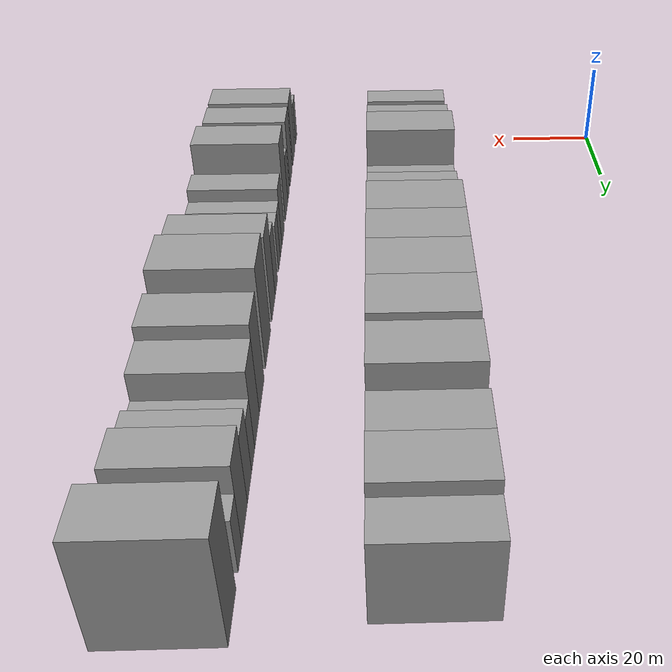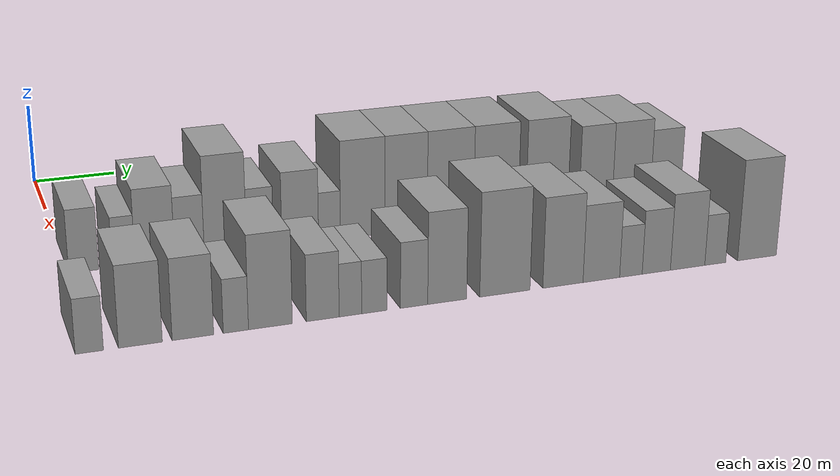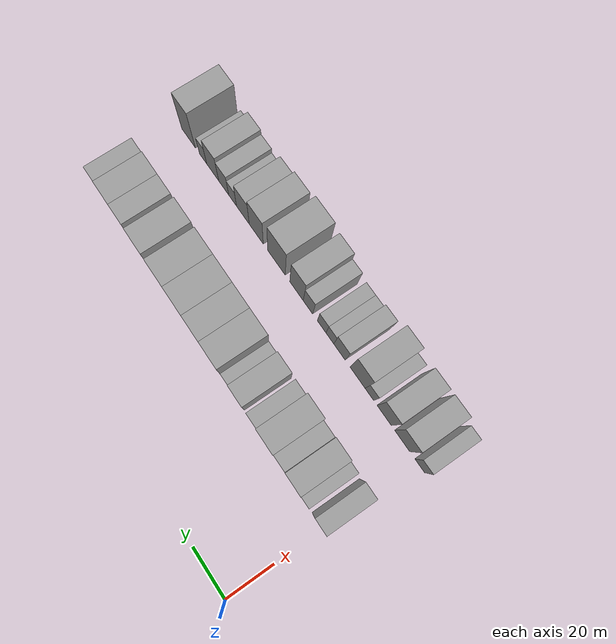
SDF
<sdf version="1.6">
 <world name="default">
  <model name="building_35">
   <static>1</static>
   <pose>50.0000 3.3389 0 0.000000 0.000000 0.000000</pose>
   <link name="link">
    <pose>0 0 7.50 0 0 0</pose>
    <collision name="collision"><geometry><box><size>20.0000 6.6458 15.0000</size></box></geometry></collision>
    <visual name="visual">
     <cast_shadows>0</cast_shadows>
     <geometry><box><size>20.0000 6.6458 15.0000</size></box></geometry>
     <material>
      <script>
       <uri>model://grey_wall/materials/scripts</uri>
       <uri>model://grey_wall/materials/textures</uri>
       <name>vrc/grey_wall</name>
      </script>
     </material>
    </visual>
   </link>
  </model>
  <model name="building_36">
   <static>1</static>
   <pose>50.0000 12.2295 0 0.000000 0.000000 0.000000</pose>
   <link name="link">
    <pose>0 0 6.00 0 0 0</pose>
    <collision name="collision"><geometry><box><size>20.0000 5.1353 12.0000</size></box></geometry></collision>
    <visual name="visual">
     <cast_shadows>0</cast_shadows>
     <geometry><box><size>20.0000 5.1353 12.0000</size></box></geometry>
     <material>
      <script>
       <uri>model://grey_wall/materials/scripts</uri>
       <uri>model://grey_wall/materials/textures</uri>
       <name>vrc/grey_wall</name>
      </script>
     </material>
    </visual>
   </link>
  </model>
  <model name="building_37">
   <static>1</static>
   <pose>50.0000 19.2701 0 0.000000 0.000000 0.000000</pose>
   <link name="link">
    <pose>0 0 9.00 0 0 0</pose>
    <collision name="collision"><geometry><box><size>20.0000 8.9459 18.0000</size></box></geometry></collision>
    <visual name="visual">
     <cast_shadows>0</cast_shadows>
     <geometry><box><size>20.0000 8.9459 18.0000</size></box></geometry>
     <material>
      <script>
       <uri>model://grey_wall/materials/scripts</uri>
       <uri>model://grey_wall/materials/textures</uri>
       <name>vrc/grey_wall</name>
      </script>
     </material>
    </visual>
   </link>
  </model>
  <model name="building_38">
   <static>1</static>
   <pose>50.0000 27.1577 0 0.000000 0.000000 0.000000</pose>
   <link name="link">
    <pose>0 0 7.50 0 0 0</pose>
    <collision name="collision"><geometry><box><size>20.0000 6.8295 15.0000</size></box></geometry></collision>
    <visual name="visual">
     <cast_shadows>0</cast_shadows>
     <geometry><box><size>20.0000 6.8295 15.0000</size></box></geometry>
     <material>
      <script>
       <uri>model://grey_wall/materials/scripts</uri>
       <uri>model://grey_wall/materials/textures</uri>
       <name>vrc/grey_wall</name>
      </script>
     </material>
    </visual>
   </link>
  </model>
  <model name="building_39">
   <static>1</static>
   <pose>50.0000 35.4678 0 0.000000 0.000000 0.000000</pose>
   <link name="link">
    <pose>0 0 12.00 0 0 0</pose>
    <collision name="collision"><geometry><box><size>20.0000 9.7906 24.0000</size></box></geometry></collision>
    <visual name="visual">
     <cast_shadows>0</cast_shadows>
     <geometry><box><size>20.0000 9.7906 24.0000</size></box></geometry>
     <material>
      <script>
       <uri>model://grey_wall/materials/scripts</uri>
       <uri>model://grey_wall/materials/textures</uri>
       <name>vrc/grey_wall</name>
      </script>
     </material>
    </visual>
   </link>
  </model>
  <model name="building_40">
   <static>1</static>
   <pose>50.0000 43.5273 0 0.000000 0.000000 0.000000</pose>
   <link name="link">
    <pose>0 0 7.50 0 0 0</pose>
    <collision name="collision"><geometry><box><size>20.0000 6.3284 15.0000</size></box></geometry></collision>
    <visual name="visual">
     <cast_shadows>0</cast_shadows>
     <geometry><box><size>20.0000 6.3284 15.0000</size></box></geometry>
     <material>
      <script>
       <uri>model://grey_wall/materials/scripts</uri>
       <uri>model://grey_wall/materials/textures</uri>
       <name>vrc/grey_wall</name>
      </script>
     </material>
    </visual>
   </link>
  </model>
  <model name="building_41">
   <static>1</static>
   <pose>50.0000 53.0629 0 0.000000 0.000000 0.000000</pose>
   <link name="link">
    <pose>0 0 9.00 0 0 0</pose>
    <collision name="collision"><geometry><box><size>20.0000 8.7427 18.0000</size></box></geometry></collision>
    <visual name="visual">
     <cast_shadows>0</cast_shadows>
     <geometry><box><size>20.0000 8.7427 18.0000</size></box></geometry>
     <material>
      <script>
       <uri>model://grey_wall/materials/scripts</uri>
       <uri>model://grey_wall/materials/textures</uri>
       <name>vrc/grey_wall</name>
      </script>
     </material>
    </visual>
   </link>
  </model>
  <model name="building_42">
   <static>1</static>
   <pose>50.0000 60.0749 0 0.000000 0.000000 0.000000</pose>
   <link name="link">
    <pose>0 0 6.00 0 0 0</pose>
    <collision name="collision"><geometry><box><size>20.0000 5.2812 12.0000</size></box></geometry></collision>
    <visual name="visual">
     <cast_shadows>0</cast_shadows>
     <geometry><box><size>20.0000 5.2812 12.0000</size></box></geometry>
     <material>
      <script>
       <uri>model://grey_wall/materials/scripts</uri>
       <uri>model://grey_wall/materials/textures</uri>
       <name>vrc/grey_wall</name>
      </script>
     </material>
    </visual>
   </link>
  </model>
  <model name="building_43">
   <static>1</static>
   <pose>50.0000 68.1646 0 0.000000 0.000000 0.000000</pose>
   <link name="link">
    <pose>0 0 12.00 0 0 0</pose>
    <collision name="collision"><geometry><box><size>20.0000 10.8982 24.0000</size></box></geometry></collision>
    <visual name="visual">
     <cast_shadows>0</cast_shadows>
     <geometry><box><size>20.0000 10.8982 24.0000</size></box></geometry>
     <material>
      <script>
       <uri>model://grey_wall/materials/scripts</uri>
       <uri>model://grey_wall/materials/textures</uri>
       <name>vrc/grey_wall</name>
      </script>
     </material>
    </visual>
   </link>
  </model>
  <model name="building_44">
   <static>1</static>
   <pose>50.0000 78.8283 0 0.000000 0.000000 0.000000</pose>
   <link name="link">
    <pose>0 0 12.00 0 0 0</pose>
    <collision name="collision"><geometry><box><size>20.0000 10.4291 24.0000</size></box></geometry></collision>
    <visual name="visual">
     <cast_shadows>0</cast_shadows>
     <geometry><box><size>20.0000 10.4291 24.0000</size></box></geometry>
     <material>
      <script>
       <uri>model://grey_wall/materials/scripts</uri>
       <uri>model://grey_wall/materials/textures</uri>
       <name>vrc/grey_wall</name>
      </script>
     </material>
    </visual>
   </link>
  </model>
  <model name="building_45">
   <static>1</static>
   <pose>50.0000 89.8818 0 0.000000 0.000000 0.000000</pose>
   <link name="link">
    <pose>0 0 12.00 0 0 0</pose>
    <collision name="collision"><geometry><box><size>20.0000 11.6781 24.0000</size></box></geometry></collision>
    <visual name="visual">
     <cast_shadows>0</cast_shadows>
     <geometry><box><size>20.0000 11.6781 24.0000</size></box></geometry>
     <material>
      <script>
       <uri>model://grey_wall/materials/scripts</uri>
       <uri>model://grey_wall/materials/textures</uri>
       <name>vrc/grey_wall</name>
      </script>
     </material>
    </visual>
   </link>
  </model>
  <model name="building_46">
   <static>1</static>
   <pose>50.0000 101.4407 0 0.000000 0.000000 0.000000</pose>
   <link name="link">
    <pose>0 0 12.00 0 0 0</pose>
    <collision name="collision"><geometry><box><size>20.0000 11.4396 24.0000</size></box></geometry></collision>
    <visual name="visual">
     <cast_shadows>0</cast_shadows>
     <geometry><box><size>20.0000 11.4396 24.0000</size></box></geometry>
     <material>
      <script>
       <uri>model://grey_wall/materials/scripts</uri>
       <uri>model://grey_wall/materials/textures</uri>
       <name>vrc/grey_wall</name>
      </script>
     </material>
    </visual>
   </link>
  </model>
  <model name="building_47">
   <static>1</static>
   <pose>50.0000 114.6288 0 0.000000 0.000000 0.000000</pose>
   <link name="link">
    <pose>0 0 12.00 0 0 0</pose>
    <collision name="collision"><geometry><box><size>20.0000 10.9366 24.0000</size></box></geometry></collision>
    <visual name="visual">
     <cast_shadows>0</cast_shadows>
     <geometry><box><size>20.0000 10.9366 24.0000</size></box></geometry>
     <material>
      <script>
       <uri>model://grey_wall/materials/scripts</uri>
       <uri>model://grey_wall/materials/textures</uri>
       <name>vrc/grey_wall</name>
      </script>
     </material>
    </visual>
   </link>
  </model>
  <model name="building_48">
   <static>1</static>
   <pose>50.0000 127.5241 0 0.000000 0.000000 0.000000</pose>
   <link name="link">
    <pose>0 0 10.50 0 0 0</pose>
    <collision name="collision"><geometry><box><size>20.0000 8.8540 21.0000</size></box></geometry></collision>
    <visual name="visual">
     <cast_shadows>0</cast_shadows>
     <geometry><box><size>20.0000 8.8540 21.0000</size></box></geometry>
     <material>
      <script>
       <uri>model://grey_wall/materials/scripts</uri>
       <uri>model://grey_wall/materials/textures</uri>
       <name>vrc/grey_wall</name>
      </script>
     </material>
    </visual>
   </link>
  </model>
  <model name="building_49">
   <static>1</static>
   <pose>50.0000 137.0890 0 0.000000 0.000000 0.000000</pose>
   <link name="link">
    <pose>0 0 10.50 0 0 0</pose>
    <collision name="collision"><geometry><box><size>20.0000 10.2759 21.0000</size></box></geometry></collision>
    <visual name="visual">
     <cast_shadows>0</cast_shadows>
     <geometry><box><size>20.0000 10.2759 21.0000</size></box></geometry>
     <material>
      <script>
       <uri>model://grey_wall/materials/scripts</uri>
       <uri>model://grey_wall/materials/textures</uri>
       <name>vrc/grey_wall</name>
      </script>
     </material>
    </visual>
   </link>
  </model>
  <model name="building_50">
   <static>1</static>
   <pose>50.0000 146.3856 0 0.000000 0.000000 0.000000</pose>
   <link name="link">
    <pose>0 0 9.00 0 0 0</pose>
    <collision name="collision"><geometry><box><size>20.0000 8.3173 18.0000</size></box></geometry></collision>
    <visual name="visual">
     <cast_shadows>0</cast_shadows>
     <geometry><box><size>20.0000 8.3173 18.0000</size></box></geometry>
     <material>
      <script>
       <uri>model://grey_wall/materials/scripts</uri>
       <uri>model://grey_wall/materials/textures</uri>
       <name>vrc/grey_wall</name>
      </script>
     </material>
    </visual>
   </link>
  </model>
  <model name="building_103">
   <static>1</static>
   <pose>90.0000 -1.5841 0 0.000000 0.000000 0.000000</pose>
   <link name="link">
    <pose>0 0 6.00 0 0 0</pose>
    <collision name="collision"><geometry><box><size>20.0000 5.6507 12.0000</size></box></geometry></collision>
    <visual name="visual">
     <cast_shadows>0</cast_shadows>
     <geometry><box><size>20.0000 5.6507 12.0000</size></box></geometry>
     <material>
      <script>
       <uri>model://grey_wall/materials/scripts</uri>
       <uri>model://grey_wall/materials/textures</uri>
       <name>vrc/grey_wall</name>
      </script>
     </material>
    </visual>
   </link>
  </model>
  <model name="building_104">
   <static>1</static>
   <pose>90.0000 8.6840 0 0.000000 0.000000 0.000000</pose>
   <link name="link">
    <pose>0 0 9.00 0 0 0</pose>
    <collision name="collision"><geometry><box><size>20.0000 8.8856 18.0000</size></box></geometry></collision>
    <visual name="visual">
     <cast_shadows>0</cast_shadows>
     <geometry><box><size>20.0000 8.8856 18.0000</size></box></geometry>
     <material>
      <script>
       <uri>model://grey_wall/materials/scripts</uri>
       <uri>model://grey_wall/materials/textures</uri>
       <name>vrc/grey_wall</name>
      </script>
     </material>
    </visual>
   </link>
  </model>
  <model name="building_105">
   <static>1</static>
   <pose>90.0000 19.4103 0 0.000000 0.000000 0.000000</pose>
   <link name="link">
    <pose>0 0 9.00 0 0 0</pose>
    <collision name="collision"><geometry><box><size>20.0000 8.5669 18.0000</size></box></geometry></collision>
    <visual name="visual">
     <cast_shadows>0</cast_shadows>
     <geometry><box><size>20.0000 8.5669 18.0000</size></box></geometry>
     <material>
      <script>
       <uri>model://grey_wall/materials/scripts</uri>
       <uri>model://grey_wall/materials/textures</uri>
       <name>vrc/grey_wall</name>
      </script>
     </material>
    </visual>
   </link>
  </model>
  <model name="building_106">
   <static>1</static>
   <pose>90.0000 28.3359 0 0.000000 0.000000 0.000000</pose>
   <link name="link">
    <pose>0 0 6.00 0 0 0</pose>
    <collision name="collision"><geometry><box><size>20.0000 5.2843 12.0000</size></box></geometry></collision>
    <visual name="visual">
     <cast_shadows>0</cast_shadows>
     <geometry><box><size>20.0000 5.2843 12.0000</size></box></geometry>
     <material>
      <script>
       <uri>model://grey_wall/materials/scripts</uri>
       <uri>model://grey_wall/materials/textures</uri>
       <name>vrc/grey_wall</name>
      </script>
     </material>
    </visual>
   </link>
  </model>
  <model name="building_107">
   <static>1</static>
   <pose>90.0000 35.6251 0 0.000000 0.000000 0.000000</pose>
   <link name="link">
    <pose>0 0 10.50 0 0 0</pose>
    <collision name="collision"><geometry><box><size>20.0000 9.2941 21.0000</size></box></geometry></collision>
    <visual name="visual">
     <cast_shadows>0</cast_shadows>
     <geometry><box><size>20.0000 9.2941 21.0000</size></box></geometry>
     <material>
      <script>
       <uri>model://grey_wall/materials/scripts</uri>
       <uri>model://grey_wall/materials/textures</uri>
       <name>vrc/grey_wall</name>
      </script>
     </material>
    </visual>
   </link>
  </model>
  <model name="building_108">
   <static>1</static>
   <pose>90.0000 46.8183 0 0.000000 0.000000 0.000000</pose>
   <link name="link">
    <pose>0 0 7.50 0 0 0</pose>
    <collision name="collision"><geometry><box><size>20.0000 7.0922 15.0000</size></box></geometry></collision>
    <visual name="visual">
     <cast_shadows>0</cast_shadows>
     <geometry><box><size>20.0000 7.0922 15.0000</size></box></geometry>
     <material>
      <script>
       <uri>model://grey_wall/materials/scripts</uri>
       <uri>model://grey_wall/materials/textures</uri>
       <name>vrc/grey_wall</name>
      </script>
     </material>
    </visual>
   </link>
  </model>
  <model name="building_109">
   <static>1</static>
   <pose>90.0000 52.8250 0 0.000000 0.000000 0.000000</pose>
   <link name="link">
    <pose>0 0 6.00 0 0 0</pose>
    <collision name="collision"><geometry><box><size>20.0000 4.9211 12.0000</size></box></geometry></collision>
    <visual name="visual">
     <cast_shadows>0</cast_shadows>
     <geometry><box><size>20.0000 4.9211 12.0000</size></box></geometry>
     <material>
      <script>
       <uri>model://grey_wall/materials/scripts</uri>
       <uri>model://grey_wall/materials/textures</uri>
       <name>vrc/grey_wall</name>
      </script>
     </material>
    </visual>
   </link>
  </model>
  <model name="building_110">
   <static>1</static>
   <pose>90.0000 58.0600 0 0.000000 0.000000 0.000000</pose>
   <link name="link">
    <pose>0 0 6.00 0 0 0</pose>
    <collision name="collision"><geometry><box><size>20.0000 5.5488 12.0000</size></box></geometry></collision>
    <visual name="visual">
     <cast_shadows>0</cast_shadows>
     <geometry><box><size>20.0000 5.5488 12.0000</size></box></geometry>
     <material>
      <script>
       <uri>model://grey_wall/materials/scripts</uri>
       <uri>model://grey_wall/materials/textures</uri>
       <name>vrc/grey_wall</name>
      </script>
     </material>
    </visual>
   </link>
  </model>
  <model name="building_111">
   <static>1</static>
   <pose>90.0000 66.8899 0 0.000000 0.000000 0.000000</pose>
   <link name="link">
    <pose>0 0 7.50 0 0 0</pose>
    <collision name="collision"><geometry><box><size>20.0000 6.1112 15.0000</size></box></geometry></collision>
    <visual name="visual">
     <cast_shadows>0</cast_shadows>
     <geometry><box><size>20.0000 6.1112 15.0000</size></box></geometry>
     <material>
      <script>
       <uri>model://grey_wall/materials/scripts</uri>
       <uri>model://grey_wall/materials/textures</uri>
       <name>vrc/grey_wall</name>
      </script>
     </material>
    </visual>
   </link>
  </model>
  <model name="building_112">
   <static>1</static>
   <pose>90.0000 74.3477 0 0.000000 0.000000 0.000000</pose>
   <link name="link">
    <pose>0 0 10.50 0 0 0</pose>
    <collision name="collision"><geometry><box><size>20.0000 8.8043 21.0000</size></box></geometry></collision>
    <visual name="visual">
     <cast_shadows>0</cast_shadows>
     <geometry><box><size>20.0000 8.8043 21.0000</size></box></geometry>
     <material>
      <script>
       <uri>model://grey_wall/materials/scripts</uri>
       <uri>model://grey_wall/materials/textures</uri>
       <name>vrc/grey_wall</name>
      </script>
     </material>
    </visual>
   </link>
  </model>
  <model name="building_113">
   <static>1</static>
   <pose>90.0000 87.5707 0 0.000000 0.000000 0.000000</pose>
   <link name="link">
    <pose>0 0 12.00 0 0 0</pose>
    <collision name="collision"><geometry><box><size>20.0000 11.6418 24.0000</size></box></geometry></collision>
    <visual name="visual">
     <cast_shadows>0</cast_shadows>
     <geometry><box><size>20.0000 11.6418 24.0000</size></box></geometry>
     <material>
      <script>
       <uri>model://grey_wall/materials/scripts</uri>
       <uri>model://grey_wall/materials/textures</uri>
       <name>vrc/grey_wall</name>
      </script>
     </material>
    </visual>
   </link>
  </model>
  <model name="building_114">
   <static>1</static>
   <pose>90.0000 101.1478 0 0.000000 0.000000 0.000000</pose>
   <link name="link">
    <pose>0 0 10.50 0 0 0</pose>
    <collision name="collision"><geometry><box><size>20.0000 9.5124 21.0000</size></box></geometry></collision>
    <visual name="visual">
     <cast_shadows>0</cast_shadows>
     <geometry><box><size>20.0000 9.5124 21.0000</size></box></geometry>
     <material>
      <script>
       <uri>model://grey_wall/materials/scripts</uri>
       <uri>model://grey_wall/materials/textures</uri>
       <name>vrc/grey_wall</name>
      </script>
     </material>
    </visual>
   </link>
  </model>
  <model name="building_115">
   <static>1</static>
   <pose>90.0000 110.2973 0 0.000000 0.000000 0.000000</pose>
   <link name="link">
    <pose>0 0 9.00 0 0 0</pose>
    <collision name="collision"><geometry><box><size>20.0000 8.7867 18.0000</size></box></geometry></collision>
    <visual name="visual">
     <cast_shadows>0</cast_shadows>
     <geometry><box><size>20.0000 8.7867 18.0000</size></box></geometry>
     <material>
      <script>
       <uri>model://grey_wall/materials/scripts</uri>
       <uri>model://grey_wall/materials/textures</uri>
       <name>vrc/grey_wall</name>
      </script>
     </material>
    </visual>
   </link>
  </model>
  <model name="building_116">
   <static>1</static>
   <pose>90.0000 117.4293 0 0.000000 0.000000 0.000000</pose>
   <link name="link">
    <pose>0 0 6.00 0 0 0</pose>
    <collision name="collision"><geometry><box><size>20.0000 5.4772 12.0000</size></box></geometry></collision>
    <visual name="visual">
     <cast_shadows>0</cast_shadows>
     <geometry><box><size>20.0000 5.4772 12.0000</size></box></geometry>
     <material>
      <script>
       <uri>model://grey_wall/materials/scripts</uri>
       <uri>model://grey_wall/materials/textures</uri>
       <name>vrc/grey_wall</name>
      </script>
     </material>
    </visual>
   </link>
  </model>
  <model name="building_117">
   <static>1</static>
   <pose>90.0000 123.6310 0 0.000000 0.000000 0.000000</pose>
   <link name="link">
    <pose>0 0 7.50 0 0 0</pose>
    <collision name="collision"><geometry><box><size>20.0000 6.9262 15.0000</size></box></geometry></collision>
    <visual name="visual">
     <cast_shadows>0</cast_shadows>
     <geometry><box><size>20.0000 6.9262 15.0000</size></box></geometry>
     <material>
      <script>
       <uri>model://grey_wall/materials/scripts</uri>
       <uri>model://grey_wall/materials/textures</uri>
       <name>vrc/grey_wall</name>
      </script>
     </material>
    </visual>
   </link>
  </model>
  <model name="building_118">
   <static>1</static>
   <pose>90.0000 131.3667 0 0.000000 0.000000 0.000000</pose>
   <link name="link">
    <pose>0 0 9.00 0 0 0</pose>
    <collision name="collision"><geometry><box><size>20.0000 8.5453 18.0000</size></box></geometry></collision>
    <visual name="visual">
     <cast_shadows>0</cast_shadows>
     <geometry><box><size>20.0000 8.5453 18.0000</size></box></geometry>
     <material>
      <script>
       <uri>model://grey_wall/materials/scripts</uri>
       <uri>model://grey_wall/materials/textures</uri>
       <name>vrc/grey_wall</name>
      </script>
     </material>
    </visual>
   </link>
  </model>
  <model name="building_119">
   <static>1</static>
   <pose>90.0000 138.2648 0 0.000000 0.000000 0.000000</pose>
   <link name="link">
    <pose>0 0 6.00 0 0 0</pose>
    <collision name="collision"><geometry><box><size>20.0000 5.2509 12.0000</size></box></geometry></collision>
    <visual name="visual">
     <cast_shadows>0</cast_shadows>
     <geometry><box><size>20.0000 5.2509 12.0000</size></box></geometry>
     <material>
      <script>
       <uri>model://grey_wall/materials/scripts</uri>
       <uri>model://grey_wall/materials/textures</uri>
       <name>vrc/grey_wall</name>
      </script>
     </material>
    </visual>
   </link>
  </model>
  <model name="building_120">
   <static>1</static>
   <pose>90.0000 148.8234 0 0.000000 0.000000 0.000000</pose>
   <link name="link">
    <pose>0 0 12.00 0 0 0</pose>
    <collision name="collision"><geometry><box><size>20.0000 9.8663 24.0000</size></box></geometry></collision>
    <visual name="visual">
     <cast_shadows>0</cast_shadows>
     <geometry><box><size>20.0000 9.8663 24.0000</size></box></geometry>
     <material>
      <script>
       <uri>model://grey_wall/materials/scripts</uri>
       <uri>model://grey_wall/materials/textures</uri>
       <name>vrc/grey_wall</name>
      </script>
     </material>
    </visual>
   </link>
  </model>
 </world>
</sdf>
